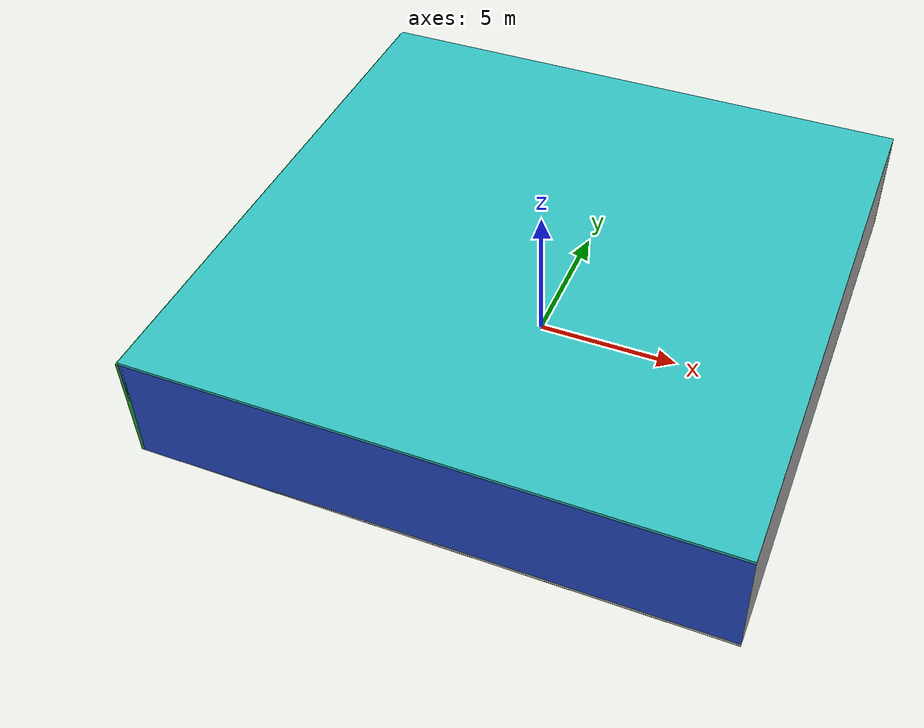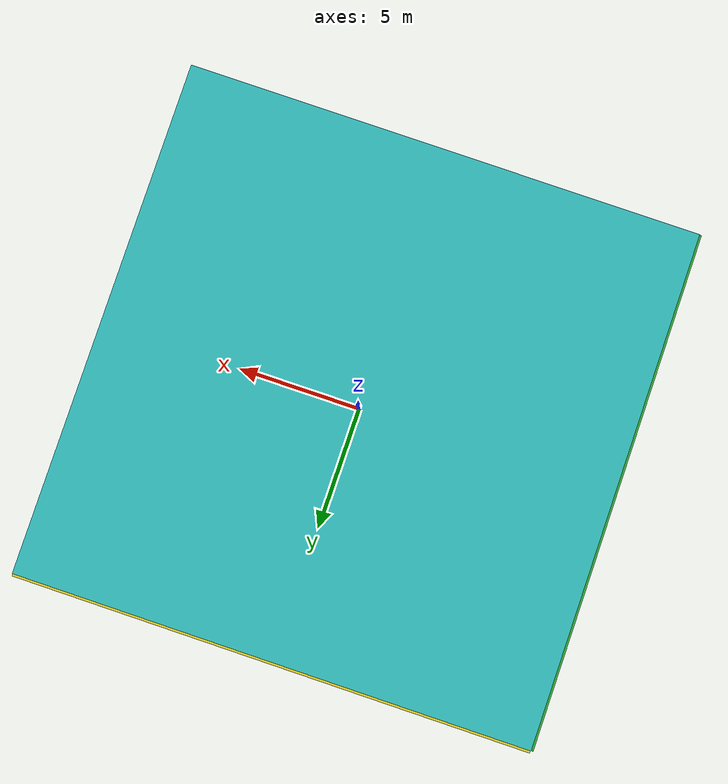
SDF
<sdf version="1.4">
 <world name="default">
  <physics type="ode">
   <max_step_size>0.001</max_step_size>
   <real_time_factor>1</real_time_factor>
   <real_time_update_rate>1000</real_time_update_rate>
   <gravity>0 0 -9.8</gravity>
  </physics>
  <scene><ambient>0.4 0.4 0.4 1</ambient><background>0.7 0.7 0.7 1</background><shadows>1</shadows></scene>
  <model name="Surrounding">
   <static>1</static>
   <link name="Ceiling">
    <collision name="Ceiling_Collision"><geometry><box><size>20 20 0.1</size></box></geometry></collision>
    <visual name="Ceiling_Visual">
     <geometry><box><size>20 20 0.1</size></box></geometry>
     <material>
      <script>
       <uri>file://media/materials/scripts/gazebo.material</uri>
       <name>Gazebo/TurquoiseGlowOutline</name>
      </script>
     </material>
    </visual>
    <pose>0 0 4.05 0 0 0</pose>
   </link>
   <link name="Wall_South">
    <collision name="Wall_South_Collision">
     <geometry><box><size>20 0 4</size></box></geometry>
     <pose>0 0 2 0 -0 0</pose>
    </collision>
    <visual name="Wall_South_Visual">
     <pose>0 0 2 0 -0 0</pose>
     <geometry><box><size>20 0 4</size></box></geometry>
     <material>
      <script><uri>file://media/materials/scripts/gazebo.material</uri><name>Gazebo/BlueGlow</name></script>
     </material>
    </visual>
    <velocity_decay><linear>0</linear><angular>0</angular></velocity_decay>
    <pose>0 -10 0 0 -0 0</pose>
   </link>
   <link name="Wall_East">
    <collision name="Wall_21_Collision">
     <geometry><box><size>20 0 4</size></box></geometry>
     <pose>0 0 2 0 -0 0</pose>
    </collision>
    <visual name="Wall_21_Visual">
     <pose>0 0 2 0 -0 0</pose>
     <geometry><box><size>20 0 4</size></box></geometry>
     <material>
      <script><uri>file://media/materials/scripts/gazebo.material</uri><name>Gazebo/Pioneer2Body</name></script>
     </material>
    </visual>
    <velocity_decay><linear>0</linear><angular>0</angular></velocity_decay>
    <pose>10 0 0 0 -0 1.5708</pose>
   </link>
   <link name="Wall_North">
    <collision name="Wall_22_Collision">
     <geometry><box><size>20 0.2 4</size></box></geometry>
     <pose>0 0 2 0 -0 0</pose>
    </collision>
    <visual name="Wall_22_Visual">
     <pose>0 0 2 0 -0 0</pose>
     <geometry><box><size>20 0.2 4</size></box></geometry>
     <material>
      <script><uri>file://media/materials/scripts/gazebo.material</uri><name>Gazebo/Yellow</name></script>
     </material>
    </visual>
    <velocity_decay><linear>0</linear><angular>0</angular></velocity_decay>
    <pose>0 10 0 0 -0 0</pose>
   </link>
   <link name="Wall_West">
    <collision name="Wall_23_Collision">
     <geometry><box><size>20 0.2 4</size></box></geometry>
     <pose>0 0 2 0 -0 0</pose>
    </collision>
    <visual name="Wall_23_Visual">
     <pose>0 0 2 0 -0 0</pose>
     <geometry><box><size>20 0.2 4</size></box></geometry>
     <material>
      <script><uri>file://media/materials/scripts/gazebo.material</uri><name>Gazebo/GreenGlow</name></script>
     </material>
    </visual>
    <velocity_decay><linear>0</linear><angular>0</angular></velocity_decay>
    <pose>-10 0 0 0 0 -1.5708</pose>
   </link>
   <link name="Ground_link">
    <collision name="collision">
     <pose>0 0 .05 0 -0 0</pose>
     <geometry><box><size>20 20 0.1</size></box></geometry>
    </collision>
    <visual name="visual">
     <pose>0 0 .05 0 -0 0</pose>
     <geometry><box><size>20 20 0.1</size></box></geometry>
     <material>
      <script><uri>file://media/materials/scripts/gazebo.material</uri><name>Gazebo/PaintedWall</name></script>
     </material>
    </visual>
   </link>
   <static>1</static>
  </model>
  <spherical_coordinates>
   <surface_model>EARTH_WGS84</surface_model>
   <latitude_deg>0</latitude_deg>
   <longitude_deg>0</longitude_deg>
   <elevation>0</elevation>
   <heading_deg>0</heading_deg>
  </spherical_coordinates>
  <light name="lightball_0" type="diffuse">
   <diffuse>0.8 0.8 0.8 1</diffuse>
   <specular>0.2 0.2 0.2 1</specular>
   <attenuation>
    <range>100</range>
    <constant>0.7</constant>
    <linear>0.01</linear>
    <quadratic>0.001</quadratic>
   </attenuation>
   <direction>-0.5 0.1 -0.9</direction>
   <pose>-6.56966026552 -8.3602529219 1.85820561985 0 0 0</pose>
  </light>
  <light name="lightball_1" type="diffuse">
   <diffuse>0.8 0.8 0.8 1</diffuse>
   <specular>0.2 0.2 0.2 1</specular>
   <attenuation>
    <range>100</range>
    <constant>0.7</constant>
    <linear>0.01</linear>
    <quadratic>0.001</quadratic>
   </attenuation>
   <direction>-0.5 0.1 -0.9</direction>
   <pose>7.78170155343 1.3360662584 2.95067505552 0 0 0</pose>
  </light>
  <light name="lightball_2" type="diffuse">
   <diffuse>0.8 0.8 0.8 1</diffuse>
   <specular>0.2 0.2 0.2 1</specular>
   <attenuation>
    <range>100</range>
    <constant>0.7</constant>
    <linear>0.01</linear>
    <quadratic>0.001</quadratic>
   </attenuation>
   <direction>-0.5 0.1 -0.9</direction>
   <pose>0.861196837024 1.16146411848 1.12262257136 0 0 0</pose>
  </light>
  <light name="lightball_3" type="diffuse">
   <diffuse>0.8 0.8 0.8 1</diffuse>
   <specular>0.2 0.2 0.2 1</specular>
   <attenuation>
    <range>100</range>
    <constant>0.7</constant>
    <linear>0.01</linear>
    <quadratic>0.001</quadratic>
   </attenuation>
   <direction>-0.5 0.1 -0.9</direction>
   <pose>8.41662880927 3.59812017442 1.29589336764 0 0 0</pose>
  </light>
  <light name="lightball_4" type="diffuse">
   <diffuse>0.8 0.8 0.8 1</diffuse>
   <specular>0.2 0.2 0.2 1</specular>
   <attenuation>
    <range>100</range>
    <constant>0.7</constant>
    <linear>0.01</linear>
    <quadratic>0.001</quadratic>
   </attenuation>
   <direction>-0.5 0.1 -0.9</direction>
   <pose>3.44577262068 -3.72970816222 1.28375536118 0 0 0</pose>
  </light>
  <light name="lightball_5" type="diffuse">
   <diffuse>0.8 0.8 0.8 1</diffuse>
   <specular>0.2 0.2 0.2 1</specular>
   <attenuation>
    <range>100</range>
    <constant>0.7</constant>
    <linear>0.01</linear>
    <quadratic>0.001</quadratic>
   </attenuation>
   <direction>-0.5 0.1 -0.9</direction>
   <pose>7.19417390042 4.40902447096 3.8875037906 0 0 0</pose>
  </light>
  <light name="lightball_6" type="diffuse">
   <diffuse>0.8 0.8 0.8 1</diffuse>
   <specular>0.2 0.2 0.2 1</specular>
   <attenuation>
    <range>100</range>
    <constant>0.7</constant>
    <linear>0.01</linear>
    <quadratic>0.001</quadratic>
   </attenuation>
   <direction>-0.5 0.1 -0.9</direction>
   <pose>-5.24281989826 2.30232603456 1.36780815221 0 0 0</pose>
  </light>
  <include><uri>model://cabinet</uri><pose>-7.88703471301 5.1776580126 0 0 0 1.83671807313</pose></include>
  <include><uri>model://cabinet</uri><pose>-4.94928411742 4.89848150642 0 0 0 0.951582477973</pose></include>
  <include>
   <uri>model://textured_shapes</uri>
   <pose>-1.99539739219 -7.04937259531 0 0 0 1.05184824823</pose>
  </include>
  <include><uri>model://table</uri><pose>-1.78695445052 4.07469996638 0 0 0 2.89286966981</pose></include>
  <include><uri>model://cabinet</uri><pose>1.24064159044 0.779398906034 0 0 0 0.0864578403383</pose></include>
 </world>
</sdf>

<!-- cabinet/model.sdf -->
<sdf version="1.5">
  <model name="cabinet">
    <static>true</static>
    <link name="cabinet_bottom_plate">
      <inertial>
        <pose>0 0 -1 0 0 0</pose>
        <inertia>
          <ixx>2.050000</ixx>
          <ixy>0</ixy>
          <ixz>0</ixz>
          <iyy>2.050000</iyy>
          <iyz>0</iyz>
          <izz>2.050000</izz>
        </inertia>
        <mass>25.000000</mass>
      </inertial>
      <collision name="cabinet_bottom_plate_geom">
        <pose>0 0 0.010000 0 0 0</pose>
        <geometry>
          <box>
            <size>0.450000 0.450000 0.020000</size>
          </box>
        </geometry>
      </collision>
      <visual name="cabinet_bottom_plate_geom_visual">
        <pose>0 0 0.010000 0 0 0</pose>
        <geometry>
          <box>
            <size>0.450000 0.450000 0.020000</size>
          </box>
        </geometry>
        <material>
          <script>
            <uri>model://media/materials/scripts/gazebo.material</uri>
            <name>Gazebo/Wood</name>
          </script>
        </material>
      </visual>
      <collision name="cabinet_bottom_plate_geom_cabinet_back_plate">
        <pose>0.235000 0 0.510000 0 0 0</pose>
        <geometry>
          <box>
            <size>0.020000 0.450000 1.020000</size>
          </box>
        </geometry>
      </collision>
      <visual name="cabinet_bottom_plate_geom_cabinet_back_plate_visual">
        <pose>0.235000 0 0.510000 0 0 0</pose>
        <geometry>
          <box>
            <size>0.020000 0.450000 1.020000</size>
          </box>
        </geometry>
        <material>
          <script>
            <uri>model://media/materials/scripts/gazebo.material</uri>
            <name>Gazebo/Wood</name>
          </script>
        </material>
      </visual>
      <collision name="cabinet_bottom_plate_geom_cabinet_left_plate">
        <pose>0 0.235000 0.510000 0 0 0</pose>
        <geometry>
          <box>
            <size>0.450000 0.020000 1.020000</size>
          </box>
        </geometry>
      </collision>
      <visual name="cabinet_bottom_plate_geom_cabinet_left_plate_visual">
        <pose>0 0.235000 0.510000 0 0 0</pose>
        <geometry>
          <box>
            <size>0.450000 0.020000 1.020000</size>
          </box>
        </geometry>
        <material>
          <script>
            <uri>model://media/materials/scripts/gazebo.material</uri>
            <name>Gazebo/Wood</name>
          </script>
        </material>
      </visual>
      <collision name="cabinet_bottom_plate_geom_cabinet_middle_plate">
        <pose>0 0 0.510000 0 0 0</pose>
        <geometry>
          <box>
            <size>0.450000 0.450000 0.020000</size>
          </box>
        </geometry>
      </collision>
      <visual name="cabinet_bottom_plate_geom_cabinet_middle_plate_visual">
        <pose>0 0 0.510000 0 0 0</pose>
        <geometry>
          <box>
            <size>0.450000 0.450000 0.020000</size>
          </box>
        </geometry>
        <material>
          <script>
            <uri>model://media/materials/scripts/gazebo.material</uri>
            <name>Gazebo/Wood</name>
          </script>
        </material>
      </visual>
      <collision name="cabinet_bottom_plate_geom_cabinet_right_plate">
        <pose>0 -0.235000 0.510000 0 0 0</pose>
        <geometry>
          <box>
            <size>0.450000 0.020000 1.020000</size>
          </box>
        </geometry>
      </collision>
      <visual name="cabinet_bottom_plate_geom_cabinet_right_plate_visual">
        <pose>0 -0.235000 0.510000 0 0 0</pose>
        <geometry>
          <box>
            <size>0.450000 0.020000 1.020000</size>
          </box>
        </geometry>
        <material>
          <script>
            <uri>model://media/materials/scripts/gazebo.material</uri>
            <name>Gazebo/Wood</name>
          </script>
        </material>
      </visual>
      <collision name="cabinet_bottom_plate_geom_cabinet_top_plate">
        <pose>0 0 1.010000 0 0 0</pose>
        <geometry>
          <box>
            <size>0.450000 0.450000 0.020000</size>
          </box>
        </geometry>
      </collision>
      <visual name="cabinet_bottom_plate_geom_cabinet_top_plate_visual">
        <pose>0 0 1.010000 0 0 0</pose>
        <geometry>
          <box>
            <size>0.450000 0.450000 0.020000</size>
          </box>
        </geometry>
        <material>
          <script>
            <uri>model://media/materials/scripts/gazebo.material</uri>
            <name>Gazebo/Wood</name>
          </script>
        </material>
      </visual>
    </link>
  </model>
</sdf>

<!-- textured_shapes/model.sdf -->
<sdf version="1.6">
  <model name="textured_shapes">
    <pose>0 0 0.5 0 0 0</pose>
    <link name="box">
      <pose>0 -1.5 0 0 0 0</pose>
      <collision name="collision">
        <geometry>
          <box>
            <size>1 1 1</size>
          </box>
        </geometry>
      </collision>
      <visual name="visual">
        <geometry>
          <box>
            <size>1 1 1</size>
          </box>
        </geometry>
        <material>
          <script>
            <uri>model://../model_source/models/textured_shapes/materials/scripts</uri>
            <uri>model://../model_source/models/textured_shapes/materials/textures</uri>
            <name>TexturedShape/Squares</name>
          </script>
        </material>
      </visual>
    </link>
    <link name="sphere">
      <collision name="collision">
        <geometry>
          <sphere>
            <radius>0.5</radius>
          </sphere>
        </geometry>
      </collision>
      <visual name="visual">
        <geometry>
          <sphere>
            <radius>0.5</radius>
          </sphere>
        </geometry>
        <material>
          <script>
            <uri>model://../model_source/models/textured_shapes/materials/scripts</uri>
            <uri>model://../model_source/models/textured_shapes/materials/textures</uri>
            <name>TexturedShape/Squares</name>
          </script>
        </material>
      </visual>
    </link>
    <link name="cylinder">
      <pose>0 1.5 0 0 0 0</pose>
      <collision name="collision">
        <geometry>
          <cylinder>
            <radius>0.5</radius>
            <length>1</length>
          </cylinder>
        </geometry>
      </collision>
      <visual name="visual">
        <geometry>
          <cylinder>
            <radius>0.5</radius>
            <length>1</length>
          </cylinder>
        </geometry>
        <material>
          <script>
            <uri>model://../model_source/models/textured_shapes/materials/scripts</uri>
            <uri>model://../model_source/models/textured_shapes/materials/textures</uri>
            <name>TexturedShape/Squares</name>
          </script>
        </material>
      </visual>
    </link>
  </model>
</sdf>

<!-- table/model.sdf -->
<sdf version="1.5">
  <model name="table">
    <static>true</static>
    <link name="link">
      <collision name="surface">
        <pose>0 0 1.0 0 0 0</pose>
        <geometry>
          <box>
            <size>1.5 0.8 0.03</size>
          </box>
        </geometry>
        <surface>
          <friction>
            <ode>
              <mu>0.6</mu>
              <mu2>0.6</mu2>
            </ode>
          </friction>
        </surface>
      </collision>
      <visual name="visual1">
        <pose>0 0 1.0 0 0 0</pose>
        <geometry>
          <box>
            <size>1.5 0.8 0.03</size>
          </box>
        </geometry>
        <material>
          <script>
            <uri>model://media/materials/scripts/gazebo.material</uri>
            <name>Gazebo/Wood</name>
          </script>
        </material>
      </visual>
      <collision name="front_left_leg">
        <pose>0.68 0.38 0.5 0 0 0</pose>
        <geometry>
          <cylinder>
            <radius>0.02</radius>
            <length>1.0</length>
          </cylinder>
        </geometry>
      </collision>
      <visual name="front_left_leg">
        <pose>0.68 0.38 0.5 0 0 0</pose>
        <geometry>
          <cylinder>
            <radius>0.02</radius>
            <length>1.0</length>
          </cylinder>
        </geometry>
        <material>
          <script>
            <uri>model://media/materials/scripts/gazebo.material</uri>
            <name>Gazebo/Grey</name>
          </script>
        </material>
      </visual>
      <collision name="front_right_leg">
        <pose>0.68 -0.38 0.5 0 0 0</pose>
        <geometry>
          <cylinder>
            <radius>0.02</radius>
            <length>1.0</length>
          </cylinder>
        </geometry>
      </collision>
      <visual name="front_right_leg">
        <pose>0.68 -0.38 0.5 0 0 0</pose>
        <geometry>
          <cylinder>
            <radius>0.02</radius>
            <length>1.0</length>
          </cylinder>
        </geometry>
        <material>
          <script>
            <uri>model://media/materials/scripts/gazebo.material</uri>
            <name>Gazebo/Grey</name>
          </script>
        </material>
      </visual>
      <collision name="back_right_leg">
        <pose>-0.68 -0.38 0.5 0 0 0</pose>
        <geometry>
          <cylinder>
            <radius>0.02</radius>
            <length>1.0</length>
          </cylinder>
        </geometry>
      </collision>
      <visual name="back_right_leg">
        <pose>-0.68 -0.38 0.5 0 0 0</pose>
        <geometry>
          <cylinder>
            <radius>0.02</radius>
            <length>1.0</length>
          </cylinder>
        </geometry>
        <material>
          <script>
            <uri>model://media/materials/scripts/gazebo.material</uri>
            <name>Gazebo/Grey</name>
          </script>
        </material>
      </visual>
      <collision name="back_left_leg">
        <pose>-0.68 0.38 0.5 0 0 0</pose>
        <geometry>
          <cylinder>
            <radius>0.02</radius>
            <length>1.0</length>
          </cylinder>
        </geometry>
      </collision>
      <visual name="back_left_leg">
        <pose>-0.68 0.38 0.5 0 0 0</pose>
        <geometry>
          <cylinder>
            <radius>0.02</radius>
            <length>1.0</length>
          </cylinder>
        </geometry>
        <material>
          <script>
            <uri>model://media/materials/scripts/gazebo.material</uri>
            <name>Gazebo/Grey</name>
          </script>
        </material>
      </visual>
    </link>
  </model>
</sdf>
